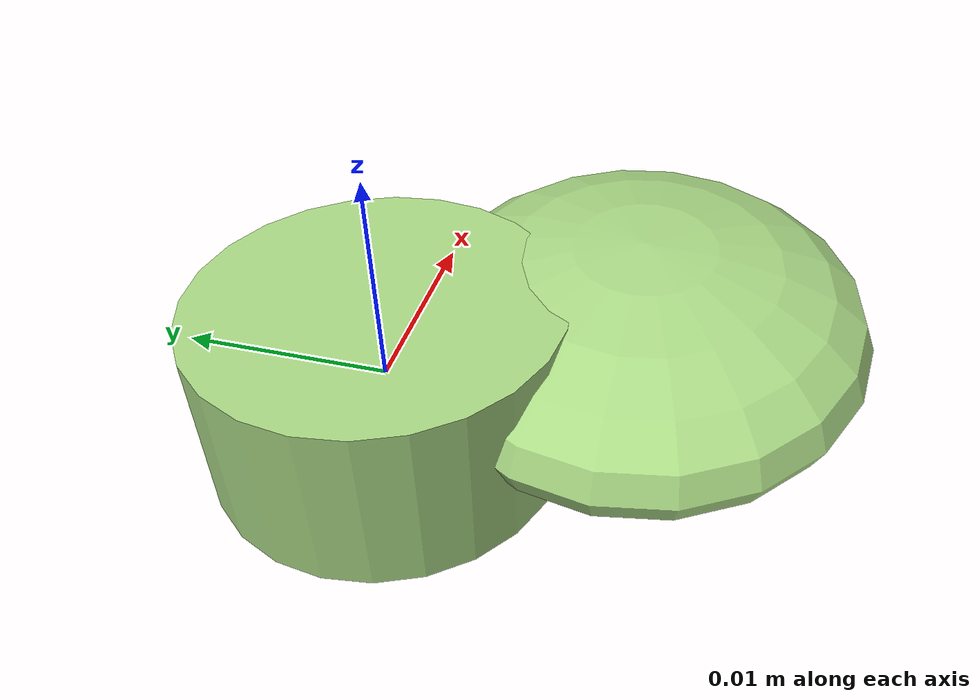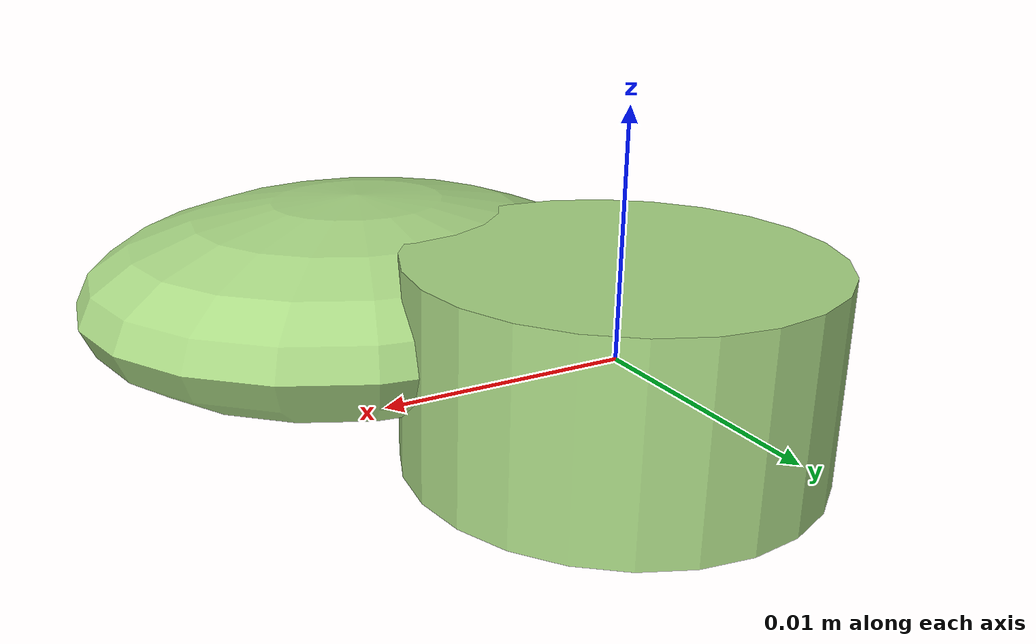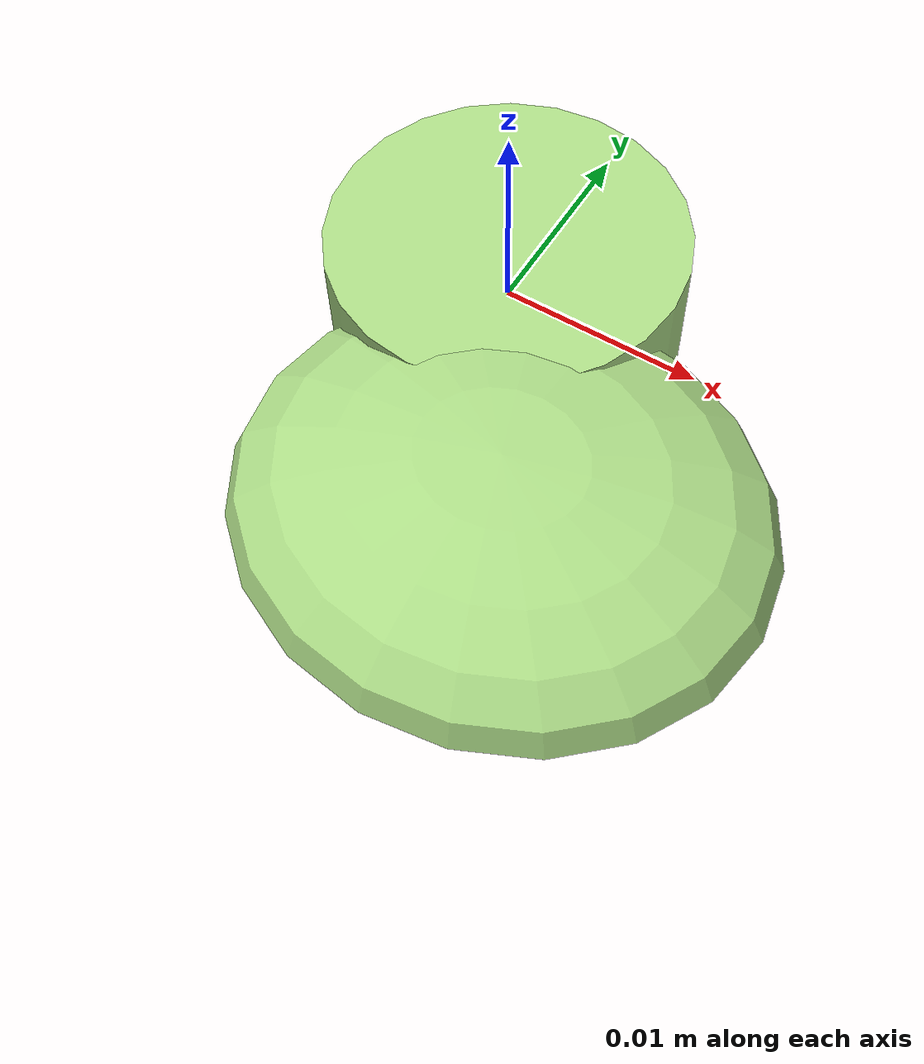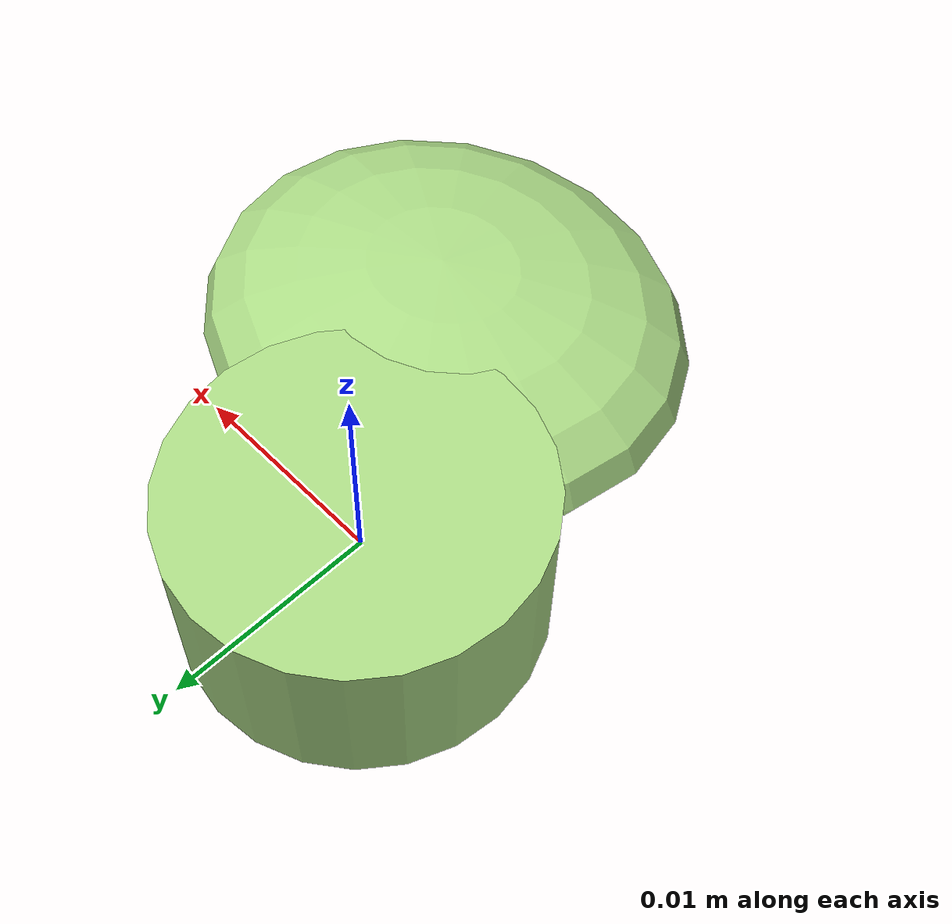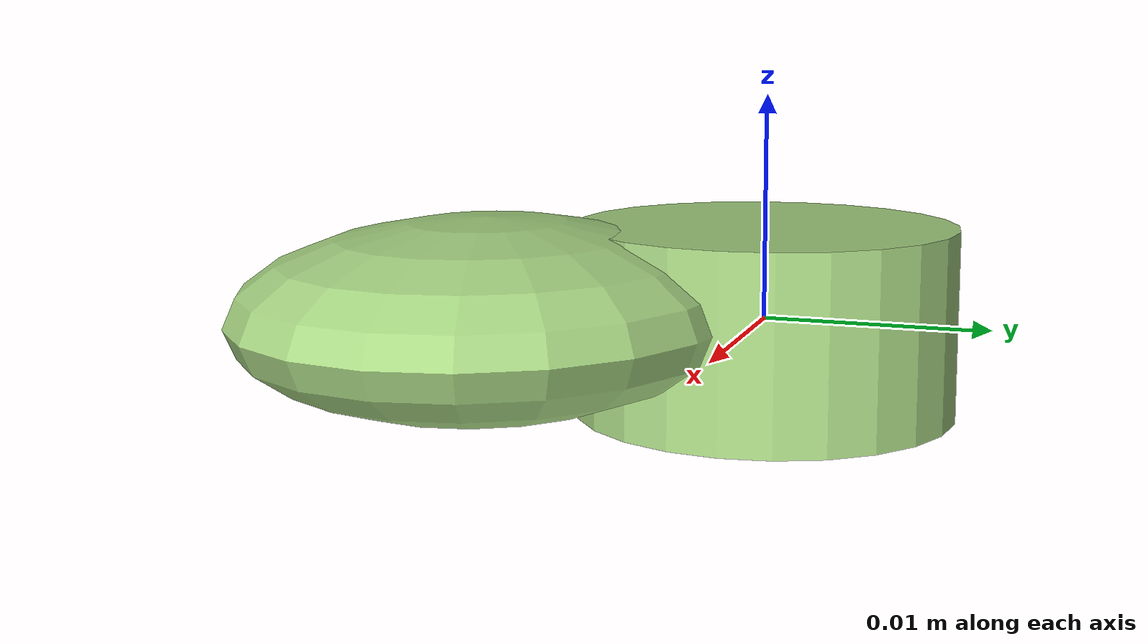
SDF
<?xml version="1.0" ?>
<!-- |    This document was autogenerated by xmacro from data/veggie_template/veggie_base.sdf.xacro  | -->
<!-- |    EDITING THIS FILE BY HAND IS NOT RECOMMENDED                                               | -->
<sdf version="1.8">
	<!-- Parameters -->
	<!-- Base -->
	<!-- Joint 0 -->
	<!-- Link 1 -->
	<!-- Joint 1 -->
	<!-- Link 2 -->
	<!-- Primitives -->
	<!-- All dimensions are half -->
	<!-- Object -->
	<model name="veggie">
		<!-- link0 -->
		<link name="link0">
			<inertial>
				<mass>0.001940516926676272</mass>
				<inertia>
					<ixx>4.7001052442420094e-08</ixx>
					<ixy>0</ixy>
					<ixz>0</ixz>
					<iyy>4.7001052442420094e-08</iyy>
					<iyz>0</iyz>
					<izz>7.088009591333277e-08</izz>
				</inertia>
			</inertial>
			<visual name="link0_visual">
				<pose>0 0 0 0 0 0</pose>
				<geometry>
					<cylinder>
						<radius>0.008547092979197719</radius>
						<length>0.008455313023236048</length>
					</cylinder>
				</geometry>
				<material>
					<ambient>0.659 0.839 0.514 1</ambient>
					<diffuse>0.659 0.839 0.514 1</diffuse>
					<specular>0 0 0 0</specular>
					<emissive>0 0 0 1</emissive>
				</material>
			</visual>
			<collision name="link0_collision">
				<pose>0 0 0 0 0 0 </pose>
				<geometry>
					<cylinder>
						<radius>0.008547092979197719</radius>
						<length>0.008455313023236048</length>
					</cylinder>
				</geometry>
			</collision>
		</link>
		<!-- link1 -->
		<joint name="joint0" type="fixed">
			<pose relative_to="link0">0.006170411449684195 -0.010844905285449404 0.0007312918923464307 0.0 0.0 0.0</pose>
			<parent>link0</parent>
			<child>link1</child>
		</joint>
		<link name="link1">
			<pose relative_to="joint0">0 0 0 0 0 0</pose>
			<inertial>
				<mass>0.002332095290746984</mass>
				<inertia>
					<ixx>6.363516086611366e-08</ixx>
					<ixy>0</ixy>
					<ixz>0</ixz>
					<iyy>7.860923914933583e-08</iyy>
					<iyz>0</iyz>
					<izz>1.2622746069387275e-07</izz>
				</inertia>
			</inertial>
			<visual name="link1_visual">
				<pose>0 0 0 0 0 0</pose>
				<geometry>
					<ellipsoid>
						<radii>0.012303157209318023 0.010920775269010804 0.0041436839530422185</radii>
					</ellipsoid>
				</geometry>
				<material>
					<ambient>0.659 0.839 0.514 1</ambient>
					<diffuse>0.659 0.839 0.514 1</diffuse>
					<specular>0 0 0 0</specular>
					<emissive>0 0 0 1</emissive>
				</material>
			</visual>
			<collision name="link1_collision">
				<pose>0 0 0 0 0 0 </pose>
				<geometry>
					<ellipsoid>
						<radii>0.012303157209318023 0.010920775269010804 0.0041436839530422185</radii>
					</ellipsoid>
				</geometry>
			</collision>
		</link>
		<!-- link2 -->
	</model>
</sdf>
